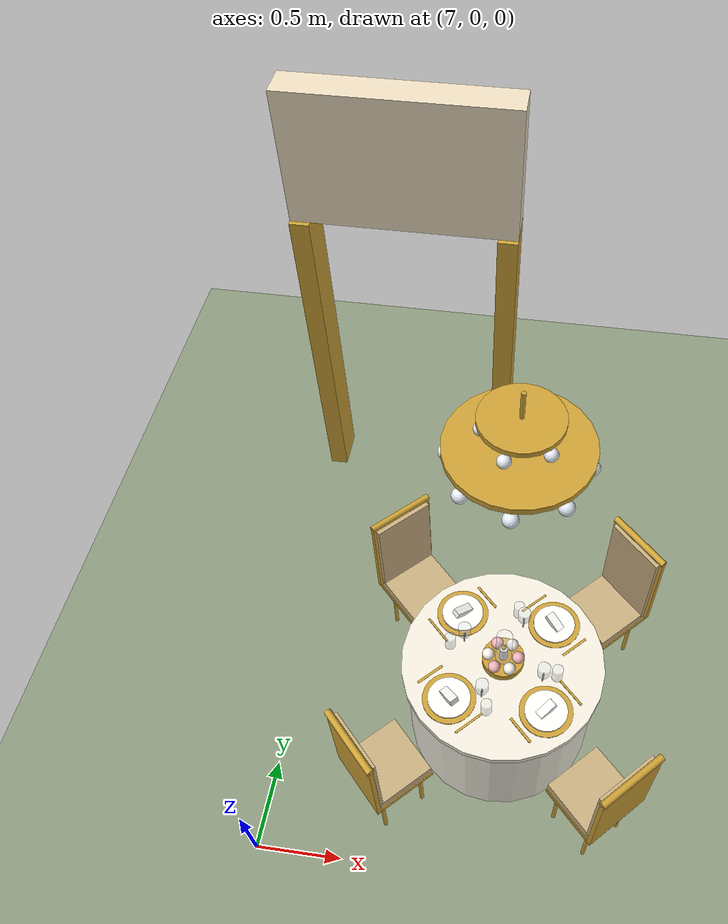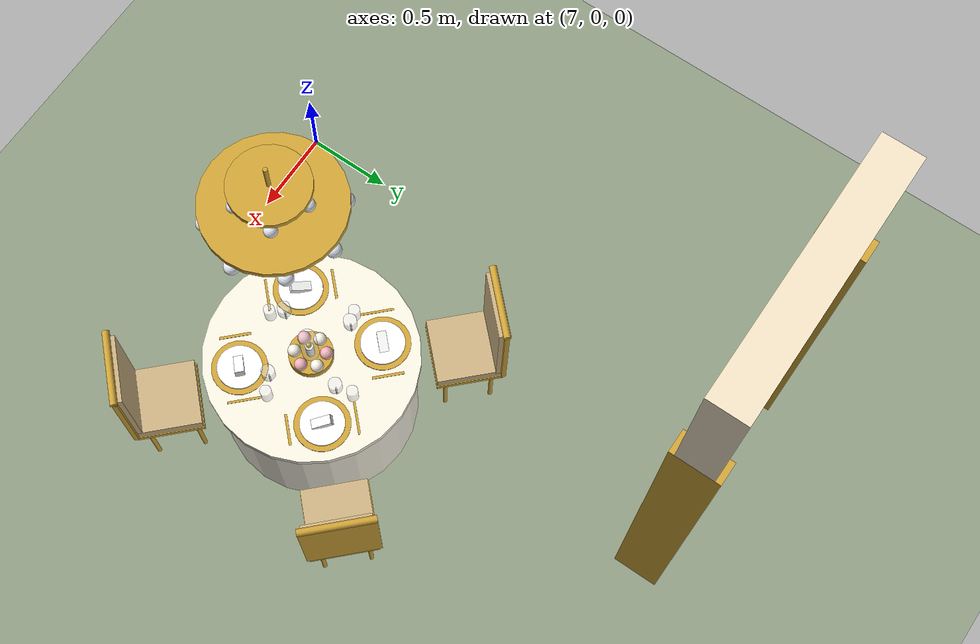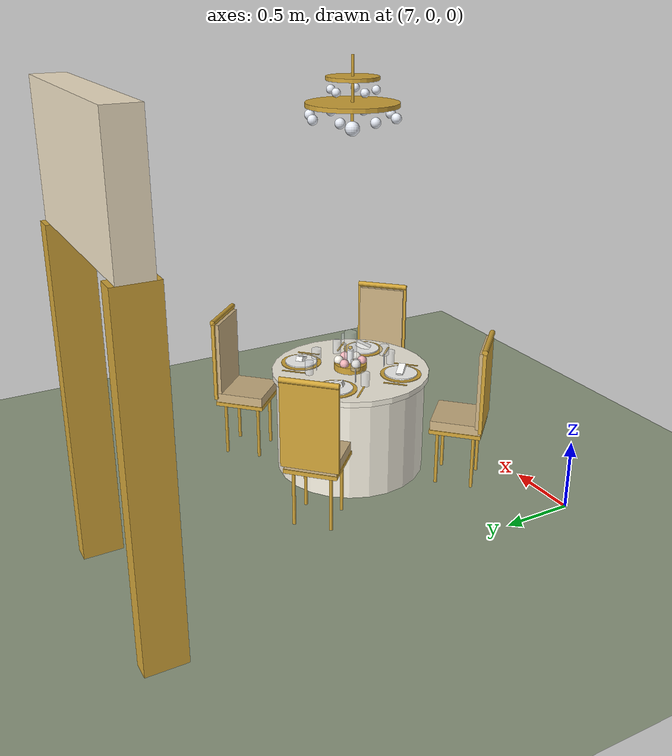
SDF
<sdf version="1.9">
 <world name="dar_tunibot">
  <model name="ground_plane">
   <static>true</static>
   <link name="link">
    <collision name="collision">
     <geometry><plane><normal>0 0 1</normal><size>60 60</size></plane></geometry>
    </collision>
    <visual name="visual">
     <geometry><plane><normal>0 0 1</normal><size>60 60</size></plane></geometry>
     <material><ambient>0.55 0.6 0.5 1</ambient><diffuse>0.55 0.6 0.5 1</diffuse></material>
    </visual>
   </link>
  </model>
  <model name="salon_arch">
   <static>true</static>
   <pose>7.45 3.0 0 0 0 0.0</pose>
   <link name="link">
    <visual name="post_a_v">
     <pose>-0.610 0.000 1.100 0.0000 0.0000 0.0000</pose>
     <geometry><box><size>0.120 0.260 2.200</size></box></geometry>
     <material>
      <ambient>0.8 0.63 0.21 1</ambient>
      <diffuse>0.8 0.63 0.21 1</diffuse>
      <specular>0.1 0.1 0.1 1</specular>
     </material>
    </visual>
    <visual name="post_b_v">
     <pose>0.610 0.000 1.100 0.0000 0.0000 0.0000</pose>
     <geometry><box><size>0.120 0.260 2.200</size></box></geometry>
     <material>
      <ambient>0.8 0.63 0.21 1</ambient>
      <diffuse>0.8 0.63 0.21 1</diffuse>
      <specular>0.1 0.1 0.1 1</specular>
     </material>
    </visual>
    <visual name="lintel_v">
     <pose>0.000 0.000 2.600 0.0000 0.0000 0.0000</pose>
     <geometry><box><size>1.340 0.200 0.800</size></box></geometry>
     <material>
      <ambient>0.93 0.87 0.76 1</ambient>
      <diffuse>0.93 0.87 0.76 1</diffuse>
      <specular>0.1 0.1 0.1 1</specular>
     </material>
    </visual>
    <collision name="lintel_c">
     <pose>0.000 0.000 2.600 0.0000 0.0000 0.0000</pose>
     <geometry><box><size>1.340 0.200 0.800</size></box></geometry>
    </collision>
    <visual name="medallion_v">
     <pose>0 0 2.6 1.5708 0 0</pose>
     <geometry><cylinder><radius>0.280</radius><length>0.050</length></cylinder></geometry>
     <material>
      <ambient>0.8 0.63 0.21 1</ambient>
      <diffuse>0.8 0.63 0.21 1</diffuse>
      <specular>0.1 0.1 0.1 1</specular>
     </material>
    </visual>
   </link>
  </model>
  <model name="table_3">
   <static>true</static>
   <pose>8.3 1.0 0 0 0 0</pose>
   <link name="link">
    <visual name="cloth_v">
     <pose>0.000 0.000 0.370 0.0000 0.0000 0.0000</pose>
     <geometry><cylinder><radius>0.550</radius><length>0.740</length></cylinder></geometry>
     <material>
      <ambient>0.95 0.93 0.87 1</ambient>
      <diffuse>0.95 0.93 0.87 1</diffuse>
      <specular>0.1 0.1 0.1 1</specular>
     </material>
    </visual>
    <collision name="cloth_c">
     <pose>0.000 0.000 0.370 0.0000 0.0000 0.0000</pose>
     <geometry><cylinder><radius>0.550</radius><length>0.740</length></cylinder></geometry>
    </collision>
    <visual name="drape_v">
     <pose>0.000 0.000 0.750 0.0000 0.0000 0.0000</pose>
     <geometry><cylinder><radius>0.580</radius><length>0.040</length></cylinder></geometry>
     <material>
      <ambient>0.95 0.93 0.87 1</ambient>
      <diffuse>0.95 0.93 0.87 1</diffuse>
      <specular>0.1 0.1 0.1 1</specular>
     </material>
    </visual>
    <visual name="bowl_v">
     <pose>0.000 0.000 0.795 0.0000 0.0000 0.0000</pose>
     <geometry><cylinder><radius>0.120</radius><length>0.050</length></cylinder></geometry>
     <material>
      <ambient>0.8 0.63 0.21 1</ambient>
      <diffuse>0.8 0.63 0.21 1</diffuse>
      <specular>0.1 0.1 0.1 1</specular>
     </material>
    </visual>
    <visual name="bowl_foot_v">
     <pose>0.000 0.000 0.775 0.0000 0.0000 0.0000</pose>
     <geometry><cylinder><radius>0.060</radius><length>0.020</length></cylinder></geometry>
     <material>
      <ambient>0.8 0.63 0.21 1</ambient>
      <diffuse>0.8 0.63 0.21 1</diffuse>
      <specular>0.1 0.1 0.1 1</specular>
     </material>
    </visual>
    <visual name="candle_v">
     <pose>0.000 0.000 0.870 0.0000 0.0000 0.0000</pose>
     <geometry><cylinder><radius>0.022</radius><length>0.100</length></cylinder></geometry>
     <material>
      <ambient>0.98 0.98 0.97 1</ambient>
      <diffuse>0.98 0.98 0.97 1</diffuse>
      <specular>0.1 0.1 0.1 1</specular>
     </material>
    </visual>
    <visual name="flame_v">
     <pose>0.000 0.000 0.935 0.0000 0.0000 0.0000</pose>
     <geometry><sphere><radius>0.014</radius></sphere></geometry>
     <material>
      <ambient>0.8 0.63 0.21 1</ambient>
      <diffuse>0.8 0.63 0.21 1</diffuse>
      <specular>0.1 0.1 0.1 1</specular>
      <emissive>1.0 0.6 0.2 1</emissive>
     </material>
    </visual>
    <visual name="hurricane_v">
     <pose>0.000 0.000 0.940 0.0000 0.0000 0.0000</pose>
     <geometry><cylinder><radius>0.045</radius><length>0.240</length></cylinder></geometry>
     <transparency>0.75</transparency>
     <material>
      <ambient>0.9 0.92 0.96 1</ambient>
      <diffuse>0.9 0.92 0.96 1</diffuse>
      <specular>0.1 0.1 0.1 1</specular>
     </material>
    </visual>
    <visual name="rose0_v">
     <pose>0.085 0.000 0.835 0.0000 0.0000 0.0000</pose>
     <geometry><sphere><radius>0.035</radius></sphere></geometry>
     <material>
      <ambient>0.93 0.7 0.72 1</ambient>
      <diffuse>0.93 0.7 0.72 1</diffuse>
      <specular>0.1 0.1 0.1 1</specular>
     </material>
    </visual>
    <visual name="rose1_v">
     <pose>0.043 0.074 0.835 0.0000 0.0000 0.0000</pose>
     <geometry><sphere><radius>0.035</radius></sphere></geometry>
     <material>
      <ambient>0.97 0.95 0.91 1</ambient>
      <diffuse>0.97 0.95 0.91 1</diffuse>
      <specular>0.1 0.1 0.1 1</specular>
     </material>
    </visual>
    <visual name="rose2_v">
     <pose>-0.042 0.074 0.835 0.0000 0.0000 0.0000</pose>
     <geometry><sphere><radius>0.035</radius></sphere></geometry>
     <material>
      <ambient>0.93 0.7 0.72 1</ambient>
      <diffuse>0.93 0.7 0.72 1</diffuse>
      <specular>0.1 0.1 0.1 1</specular>
     </material>
    </visual>
    <visual name="rose3_v">
     <pose>-0.085 0.000 0.835 0.0000 0.0000 0.0000</pose>
     <geometry><sphere><radius>0.035</radius></sphere></geometry>
     <material>
      <ambient>0.97 0.95 0.91 1</ambient>
      <diffuse>0.97 0.95 0.91 1</diffuse>
      <specular>0.1 0.1 0.1 1</specular>
     </material>
    </visual>
    <visual name="rose4_v">
     <pose>-0.043 -0.074 0.835 0.0000 0.0000 0.0000</pose>
     <geometry><sphere><radius>0.035</radius></sphere></geometry>
     <material>
      <ambient>0.93 0.7 0.72 1</ambient>
      <diffuse>0.93 0.7 0.72 1</diffuse>
      <specular>0.1 0.1 0.1 1</specular>
     </material>
    </visual>
    <visual name="rose5_v">
     <pose>0.043 -0.074 0.835 0.0000 0.0000 0.0000</pose>
     <geometry><sphere><radius>0.035</radius></sphere></geometry>
     <material>
      <ambient>0.97 0.95 0.91 1</ambient>
      <diffuse>0.97 0.95 0.91 1</diffuse>
      <specular>0.1 0.1 0.1 1</specular>
     </material>
    </visual>
    <collision name="seat0_c">
     <pose>0.580 0.580 0.225 0.0000 0.0000 0.0000</pose>
     <geometry><box><size>0.400 0.400 0.450</size></box></geometry>
    </collision>
    <visual name="seat_frame0_v">
     <pose>0.580 0.580 0.430 0.0000 0.0000 0.7854</pose>
     <geometry><box><size>0.370 0.370 0.030</size></box></geometry>
     <material>
      <ambient>0.8 0.63 0.21 1</ambient>
      <diffuse>0.8 0.63 0.21 1</diffuse>
      <specular>0.1 0.1 0.1 1</specular>
     </material>
    </visual>
    <visual name="cushion0_v">
     <pose>0.580 0.580 0.480 0.0000 0.0000 0.7854</pose>
     <geometry><box><size>0.360 0.360 0.070</size></box></geometry>
     <material>
      <ambient>0.78 0.68 0.5 1</ambient>
      <diffuse>0.78 0.68 0.5 1</diffuse>
      <specular>0.1 0.1 0.1 1</specular>
     </material>
    </visual>
    <visual name="back_frame0_v">
     <pose>0.707 0.707 0.780 0.0000 0.0000 0.7854</pose>
     <geometry><box><size>0.025 0.400 0.620</size></box></geometry>
     <material>
      <ambient>0.8 0.63 0.21 1</ambient>
      <diffuse>0.8 0.63 0.21 1</diffuse>
      <specular>0.1 0.1 0.1 1</specular>
     </material>
    </visual>
    <visual name="back0_v">
     <pose>0.697 0.697 0.780 0.0000 0.0000 0.7854</pose>
     <geometry><box><size>0.050 0.360 0.580</size></box></geometry>
     <material>
      <ambient>0.78 0.68 0.5 1</ambient>
      <diffuse>0.78 0.68 0.5 1</diffuse>
      <specular>0.1 0.1 0.1 1</specular>
     </material>
    </visual>
    <visual name="back_top0_v">
     <pose>0.707 0.707 1.090 1.5708 0.0000 0.7854</pose>
     <geometry><cylinder><radius>0.020</radius><length>0.400</length></cylinder></geometry>
     <material>
      <ambient>0.8 0.63 0.21 1</ambient>
      <diffuse>0.8 0.63 0.21 1</diffuse>
      <specular>0.1 0.1 0.1 1</specular>
     </material>
    </visual>
    <visual name="leg0_0_v">
     <pose>0.580 0.396 0.210 0.0000 0.0000 0.7854</pose>
     <geometry><cylinder><radius>0.012</radius><length>0.420</length></cylinder></geometry>
     <material>
      <ambient>0.8 0.63 0.21 1</ambient>
      <diffuse>0.8 0.63 0.21 1</diffuse>
      <specular>0.1 0.1 0.1 1</specular>
     </material>
    </visual>
    <visual name="leg0_1_v">
     <pose>0.396 0.580 0.210 0.0000 0.0000 0.7854</pose>
     <geometry><cylinder><radius>0.012</radius><length>0.420</length></cylinder></geometry>
     <material>
      <ambient>0.8 0.63 0.21 1</ambient>
      <diffuse>0.8 0.63 0.21 1</diffuse>
      <specular>0.1 0.1 0.1 1</specular>
     </material>
    </visual>
    <visual name="leg0_2_v">
     <pose>0.764 0.580 0.210 0.0000 0.0000 0.7854</pose>
     <geometry><cylinder><radius>0.012</radius><length>0.420</length></cylinder></geometry>
     <material>
      <ambient>0.8 0.63 0.21 1</ambient>
      <diffuse>0.8 0.63 0.21 1</diffuse>
      <specular>0.1 0.1 0.1 1</specular>
     </material>
    </visual>
    <visual name="leg0_3_v">
     <pose>0.580 0.764 0.210 0.0000 0.0000 0.7854</pose>
     <geometry><cylinder><radius>0.012</radius><length>0.420</length></cylinder></geometry>
     <material>
      <ambient>0.8 0.63 0.21 1</ambient>
      <diffuse>0.8 0.63 0.21 1</diffuse>
      <specular>0.1 0.1 0.1 1</specular>
     </material>
    </visual>
    <visual name="charger0_v">
     <pose>0.269 0.269 0.773 0.0000 0.0000 0.7854</pose>
     <geometry><cylinder><radius>0.150</radius><length>0.006</length></cylinder></geometry>
     <material>
      <ambient>0.8 0.63 0.21 1</ambient>
      <diffuse>0.8 0.63 0.21 1</diffuse>
      <specular>0.1 0.1 0.1 1</specular>
     </material>
    </visual>
    <visual name="plate0_v">
     <pose>0.269 0.269 0.781 0.0000 0.0000 0.7854</pose>
     <geometry><cylinder><radius>0.120</radius><length>0.010</length></cylinder></geometry>
     <material>
      <ambient>0.98 0.98 0.97 1</ambient>
      <diffuse>0.98 0.98 0.97 1</diffuse>
      <specular>0.1 0.1 0.1 1</specular>
     </material>
    </visual>
    <visual name="napkin0_v">
     <pose>0.269 0.269 0.803 0.3500 0.0000 0.7854</pose>
     <geometry><box><size>0.050 0.110 0.035</size></box></geometry>
     <material>
      <ambient>0.98 0.98 0.97 1</ambient>
      <diffuse>0.98 0.98 0.97 1</diffuse>
      <specular>0.1 0.1 0.1 1</specular>
     </material>
    </visual>
    <visual name="fork0_v">
     <pose>0.396 0.141 0.772 0.0000 0.0000 0.7854</pose>
     <geometry><box><size>0.170 0.014 0.004</size></box></geometry>
     <material>
      <ambient>0.8 0.63 0.21 1</ambient>
      <diffuse>0.8 0.63 0.21 1</diffuse>
      <specular>0.1 0.1 0.1 1</specular>
     </material>
    </visual>
    <visual name="knife0_v">
     <pose>0.141 0.396 0.772 0.0000 0.0000 0.7854</pose>
     <geometry><box><size>0.180 0.012 0.004</size></box></geometry>
     <material>
      <ambient>0.8 0.63 0.21 1</ambient>
      <diffuse>0.8 0.63 0.21 1</diffuse>
      <specular>0.1 0.1 0.1 1</specular>
     </material>
    </visual>
    <visual name="wine_stem0_v">
     <pose>0.092 0.233 0.820 0.0000 0.0000 0.7854</pose>
     <geometry><cylinder><radius>0.004</radius><length>0.100</length></cylinder></geometry>
     <material>
      <ambient>0.9 0.92 0.96 1</ambient>
      <diffuse>0.9 0.92 0.96 1</diffuse>
      <specular>0.1 0.1 0.1 1</specular>
     </material>
    </visual>
    <visual name="wine_bowl0_v">
     <pose>0.092 0.233 0.905 0.0000 0.0000 0.7854</pose>
     <geometry><cylinder><radius>0.035</radius><length>0.070</length></cylinder></geometry>
     <transparency>0.6</transparency>
     <material>
      <ambient>0.9 0.92 0.96 1</ambient>
      <diffuse>0.9 0.92 0.96 1</diffuse>
      <specular>0.1 0.1 0.1 1</specular>
     </material>
    </visual>
    <visual name="water0_v">
     <pose>0.057 0.311 0.820 0.0000 0.0000 0.7854</pose>
     <geometry><cylinder><radius>0.030</radius><length>0.100</length></cylinder></geometry>
     <transparency>0.6</transparency>
     <material>
      <ambient>0.9 0.92 0.96 1</ambient>
      <diffuse>0.9 0.92 0.96 1</diffuse>
      <specular>0.1 0.1 0.1 1</specular>
     </material>
    </visual>
    <collision name="seat1_c">
     <pose>-0.580 0.580 0.225 0.0000 0.0000 0.0000</pose>
     <geometry><box><size>0.400 0.400 0.450</size></box></geometry>
    </collision>
    <visual name="seat_frame1_v">
     <pose>-0.580 0.580 0.430 0.0000 0.0000 2.3562</pose>
     <geometry><box><size>0.370 0.370 0.030</size></box></geometry>
     <material>
      <ambient>0.8 0.63 0.21 1</ambient>
      <diffuse>0.8 0.63 0.21 1</diffuse>
      <specular>0.1 0.1 0.1 1</specular>
     </material>
    </visual>
    <visual name="cushion1_v">
     <pose>-0.580 0.580 0.480 0.0000 0.0000 2.3562</pose>
     <geometry><box><size>0.360 0.360 0.070</size></box></geometry>
     <material>
      <ambient>0.78 0.68 0.5 1</ambient>
      <diffuse>0.78 0.68 0.5 1</diffuse>
      <specular>0.1 0.1 0.1 1</specular>
     </material>
    </visual>
    <visual name="back_frame1_v">
     <pose>-0.707 0.707 0.780 0.0000 0.0000 2.3562</pose>
     <geometry><box><size>0.025 0.400 0.620</size></box></geometry>
     <material>
      <ambient>0.8 0.63 0.21 1</ambient>
      <diffuse>0.8 0.63 0.21 1</diffuse>
      <specular>0.1 0.1 0.1 1</specular>
     </material>
    </visual>
    <visual name="back1_v">
     <pose>-0.697 0.697 0.780 0.0000 0.0000 2.3562</pose>
     <geometry><box><size>0.050 0.360 0.580</size></box></geometry>
     <material>
      <ambient>0.78 0.68 0.5 1</ambient>
      <diffuse>0.78 0.68 0.5 1</diffuse>
      <specular>0.1 0.1 0.1 1</specular>
     </material>
    </visual>
    <visual name="back_top1_v">
     <pose>-0.707 0.707 1.090 1.5708 0.0000 2.3562</pose>
     <geometry><cylinder><radius>0.020</radius><length>0.400</length></cylinder></geometry>
     <material>
      <ambient>0.8 0.63 0.21 1</ambient>
      <diffuse>0.8 0.63 0.21 1</diffuse>
      <specular>0.1 0.1 0.1 1</specular>
     </material>
    </visual>
    <visual name="leg1_0_v">
     <pose>-0.396 0.580 0.210 0.0000 0.0000 2.3562</pose>
     <geometry><cylinder><radius>0.012</radius><length>0.420</length></cylinder></geometry>
     <material>
      <ambient>0.8 0.63 0.21 1</ambient>
      <diffuse>0.8 0.63 0.21 1</diffuse>
      <specular>0.1 0.1 0.1 1</specular>
     </material>
    </visual>
    <visual name="leg1_1_v">
     <pose>-0.580 0.396 0.210 0.0000 0.0000 2.3562</pose>
     <geometry><cylinder><radius>0.012</radius><length>0.420</length></cylinder></geometry>
     <material>
      <ambient>0.8 0.63 0.21 1</ambient>
      <diffuse>0.8 0.63 0.21 1</diffuse>
      <specular>0.1 0.1 0.1 1</specular>
     </material>
    </visual>
    <visual name="leg1_2_v">
     <pose>-0.580 0.764 0.210 0.0000 0.0000 2.3562</pose>
     <geometry><cylinder><radius>0.012</radius><length>0.420</length></cylinder></geometry>
     <material>
      <ambient>0.8 0.63 0.21 1</ambient>
      <diffuse>0.8 0.63 0.21 1</diffuse>
      <specular>0.1 0.1 0.1 1</specular>
     </material>
    </visual>
    <visual name="leg1_3_v">
     <pose>-0.764 0.580 0.210 0.0000 0.0000 2.3562</pose>
     <geometry><cylinder><radius>0.012</radius><length>0.420</length></cylinder></geometry>
     <material>
      <ambient>0.8 0.63 0.21 1</ambient>
      <diffuse>0.8 0.63 0.21 1</diffuse>
      <specular>0.1 0.1 0.1 1</specular>
     </material>
    </visual>
    <visual name="charger1_v">
     <pose>-0.269 0.269 0.773 0.0000 0.0000 2.3562</pose>
     <geometry><cylinder><radius>0.150</radius><length>0.006</length></cylinder></geometry>
     <material>
      <ambient>0.8 0.63 0.21 1</ambient>
      <diffuse>0.8 0.63 0.21 1</diffuse>
      <specular>0.1 0.1 0.1 1</specular>
     </material>
    </visual>
    <visual name="plate1_v">
     <pose>-0.269 0.269 0.781 0.0000 0.0000 2.3562</pose>
     <geometry><cylinder><radius>0.120</radius><length>0.010</length></cylinder></geometry>
     <material>
      <ambient>0.98 0.98 0.97 1</ambient>
      <diffuse>0.98 0.98 0.97 1</diffuse>
      <specular>0.1 0.1 0.1 1</specular>
     </material>
    </visual>
    <visual name="napkin1_v">
     <pose>-0.269 0.269 0.803 0.3500 0.0000 2.3562</pose>
     <geometry><box><size>0.050 0.110 0.035</size></box></geometry>
     <material>
      <ambient>0.98 0.98 0.97 1</ambient>
      <diffuse>0.98 0.98 0.97 1</diffuse>
      <specular>0.1 0.1 0.1 1</specular>
     </material>
    </visual>
    <visual name="fork1_v">
     <pose>-0.141 0.396 0.772 0.0000 0.0000 2.3562</pose>
     <geometry><box><size>0.170 0.014 0.004</size></box></geometry>
     <material>
      <ambient>0.8 0.63 0.21 1</ambient>
      <diffuse>0.8 0.63 0.21 1</diffuse>
      <specular>0.1 0.1 0.1 1</specular>
     </material>
    </visual>
    <visual name="knife1_v">
     <pose>-0.396 0.141 0.772 0.0000 0.0000 2.3562</pose>
     <geometry><box><size>0.180 0.012 0.004</size></box></geometry>
     <material>
      <ambient>0.8 0.63 0.21 1</ambient>
      <diffuse>0.8 0.63 0.21 1</diffuse>
      <specular>0.1 0.1 0.1 1</specular>
     </material>
    </visual>
    <visual name="wine_stem1_v">
     <pose>-0.233 0.092 0.820 0.0000 0.0000 2.3562</pose>
     <geometry><cylinder><radius>0.004</radius><length>0.100</length></cylinder></geometry>
     <material>
      <ambient>0.9 0.92 0.96 1</ambient>
      <diffuse>0.9 0.92 0.96 1</diffuse>
      <specular>0.1 0.1 0.1 1</specular>
     </material>
    </visual>
    <visual name="wine_bowl1_v">
     <pose>-0.233 0.092 0.905 0.0000 0.0000 2.3562</pose>
     <geometry><cylinder><radius>0.035</radius><length>0.070</length></cylinder></geometry>
     <transparency>0.6</transparency>
     <material>
      <ambient>0.9 0.92 0.96 1</ambient>
      <diffuse>0.9 0.92 0.96 1</diffuse>
      <specular>0.1 0.1 0.1 1</specular>
     </material>
    </visual>
    <visual name="water1_v">
     <pose>-0.311 0.057 0.820 0.0000 0.0000 2.3562</pose>
     <geometry><cylinder><radius>0.030</radius><length>0.100</length></cylinder></geometry>
     <transparency>0.6</transparency>
     <material>
      <ambient>0.9 0.92 0.96 1</ambient>
      <diffuse>0.9 0.92 0.96 1</diffuse>
      <specular>0.1 0.1 0.1 1</specular>
     </material>
    </visual>
    <collision name="seat2_c">
     <pose>-0.580 -0.580 0.225 0.0000 0.0000 0.0000</pose>
     <geometry><box><size>0.400 0.400 0.450</size></box></geometry>
    </collision>
    <visual name="seat_frame2_v">
     <pose>-0.580 -0.580 0.430 0.0000 0.0000 3.9270</pose>
     <geometry><box><size>0.370 0.370 0.030</size></box></geometry>
     <material>
      <ambient>0.8 0.63 0.21 1</ambient>
      <diffuse>0.8 0.63 0.21 1</diffuse>
      <specular>0.1 0.1 0.1 1</specular>
     </material>
    </visual>
    <visual name="cushion2_v">
     <pose>-0.580 -0.580 0.480 0.0000 0.0000 3.9270</pose>
     <geometry><box><size>0.360 0.360 0.070</size></box></geometry>
     <material>
      <ambient>0.78 0.68 0.5 1</ambient>
      <diffuse>0.78 0.68 0.5 1</diffuse>
      <specular>0.1 0.1 0.1 1</specular>
     </material>
    </visual>
    <visual name="back_frame2_v">
     <pose>-0.707 -0.707 0.780 0.0000 0.0000 3.9270</pose>
     <geometry><box><size>0.025 0.400 0.620</size></box></geometry>
     <material>
      <ambient>0.8 0.63 0.21 1</ambient>
      <diffuse>0.8 0.63 0.21 1</diffuse>
      <specular>0.1 0.1 0.1 1</specular>
     </material>
    </visual>
    <visual name="back2_v">
     <pose>-0.697 -0.697 0.780 0.0000 0.0000 3.9270</pose>
     <geometry><box><size>0.050 0.360 0.580</size></box></geometry>
     <material>
      <ambient>0.78 0.68 0.5 1</ambient>
      <diffuse>0.78 0.68 0.5 1</diffuse>
      <specular>0.1 0.1 0.1 1</specular>
     </material>
    </visual>
    <visual name="back_top2_v">
     <pose>-0.707 -0.707 1.090 1.5708 0.0000 3.9270</pose>
     <geometry><cylinder><radius>0.020</radius><length>0.400</length></cylinder></geometry>
     <material>
      <ambient>0.8 0.63 0.21 1</ambient>
      <diffuse>0.8 0.63 0.21 1</diffuse>
      <specular>0.1 0.1 0.1 1</specular>
     </material>
    </visual>
    <visual name="leg2_0_v">
     <pose>-0.580 -0.396 0.210 0.0000 0.0000 3.9270</pose>
     <geometry><cylinder><radius>0.012</radius><length>0.420</length></cylinder></geometry>
     <material>
      <ambient>0.8 0.63 0.21 1</ambient>
      <diffuse>0.8 0.63 0.21 1</diffuse>
      <specular>0.1 0.1 0.1 1</specular>
     </material>
    </visual>
    <visual name="leg2_1_v">
     <pose>-0.396 -0.580 0.210 0.0000 0.0000 3.9270</pose>
     <geometry><cylinder><radius>0.012</radius><length>0.420</length></cylinder></geometry>
     <material>
      <ambient>0.8 0.63 0.21 1</ambient>
      <diffuse>0.8 0.63 0.21 1</diffuse>
      <specular>0.1 0.1 0.1 1</specular>
     </material>
    </visual>
    <visual name="leg2_2_v">
     <pose>-0.764 -0.580 0.210 0.0000 0.0000 3.9270</pose>
     <geometry><cylinder><radius>0.012</radius><length>0.420</length></cylinder></geometry>
     <material>
      <ambient>0.8 0.63 0.21 1</ambient>
      <diffuse>0.8 0.63 0.21 1</diffuse>
      <specular>0.1 0.1 0.1 1</specular>
     </material>
    </visual>
    <visual name="leg2_3_v">
     <pose>-0.580 -0.764 0.210 0.0000 0.0000 3.9270</pose>
     <geometry><cylinder><radius>0.012</radius><length>0.420</length></cylinder></geometry>
     <material>
      <ambient>0.8 0.63 0.21 1</ambient>
      <diffuse>0.8 0.63 0.21 1</diffuse>
      <specular>0.1 0.1 0.1 1</specular>
     </material>
    </visual>
    <visual name="charger2_v">
     <pose>-0.269 -0.269 0.773 0.0000 0.0000 3.9270</pose>
     <geometry><cylinder><radius>0.150</radius><length>0.006</length></cylinder></geometry>
     <material>
      <ambient>0.8 0.63 0.21 1</ambient>
      <diffuse>0.8 0.63 0.21 1</diffuse>
      <specular>0.1 0.1 0.1 1</specular>
     </material>
    </visual>
    <visual name="plate2_v">
     <pose>-0.269 -0.269 0.781 0.0000 0.0000 3.9270</pose>
     <geometry><cylinder><radius>0.120</radius><length>0.010</length></cylinder></geometry>
     <material>
      <ambient>0.98 0.98 0.97 1</ambient>
      <diffuse>0.98 0.98 0.97 1</diffuse>
      <specular>0.1 0.1 0.1 1</specular>
     </material>
    </visual>
    <visual name="napkin2_v">
     <pose>-0.269 -0.269 0.803 0.3500 0.0000 3.9270</pose>
     <geometry><box><size>0.050 0.110 0.035</size></box></geometry>
     <material>
      <ambient>0.98 0.98 0.97 1</ambient>
      <diffuse>0.98 0.98 0.97 1</diffuse>
      <specular>0.1 0.1 0.1 1</specular>
     </material>
    </visual>
    <visual name="fork2_v">
     <pose>-0.396 -0.141 0.772 0.0000 0.0000 3.9270</pose>
     <geometry><box><size>0.170 0.014 0.004</size></box></geometry>
     <material>
      <ambient>0.8 0.63 0.21 1</ambient>
      <diffuse>0.8 0.63 0.21 1</diffuse>
      <specular>0.1 0.1 0.1 1</specular>
     </material>
    </visual>
    <visual name="knife2_v">
     <pose>-0.141 -0.396 0.772 0.0000 0.0000 3.9270</pose>
     <geometry><box><size>0.180 0.012 0.004</size></box></geometry>
     <material>
      <ambient>0.8 0.63 0.21 1</ambient>
      <diffuse>0.8 0.63 0.21 1</diffuse>
      <specular>0.1 0.1 0.1 1</specular>
     </material>
    </visual>
    <visual name="wine_stem2_v">
     <pose>-0.092 -0.233 0.820 0.0000 0.0000 3.9270</pose>
     <geometry><cylinder><radius>0.004</radius><length>0.100</length></cylinder></geometry>
     <material>
      <ambient>0.9 0.92 0.96 1</ambient>
      <diffuse>0.9 0.92 0.96 1</diffuse>
      <specular>0.1 0.1 0.1 1</specular>
     </material>
    </visual>
    <visual name="wine_bowl2_v">
     <pose>-0.092 -0.233 0.905 0.0000 0.0000 3.9270</pose>
     <geometry><cylinder><radius>0.035</radius><length>0.070</length></cylinder></geometry>
     <transparency>0.6</transparency>
     <material>
      <ambient>0.9 0.92 0.96 1</ambient>
      <diffuse>0.9 0.92 0.96 1</diffuse>
      <specular>0.1 0.1 0.1 1</specular>
     </material>
    </visual>
    <visual name="water2_v">
     <pose>-0.057 -0.311 0.820 0.0000 0.0000 3.9270</pose>
     <geometry><cylinder><radius>0.030</radius><length>0.100</length></cylinder></geometry>
     <transparency>0.6</transparency>
     <material>
      <ambient>0.9 0.92 0.96 1</ambient>
      <diffuse>0.9 0.92 0.96 1</diffuse>
      <specular>0.1 0.1 0.1 1</specular>
     </material>
    </visual>
    <collision name="seat3_c">
     <pose>0.580 -0.580 0.225 0.0000 0.0000 0.0000</pose>
     <geometry><box><size>0.400 0.400 0.450</size></box></geometry>
    </collision>
    <visual name="seat_frame3_v">
     <pose>0.580 -0.580 0.430 0.0000 0.0000 5.4978</pose>
     <geometry><box><size>0.370 0.370 0.030</size></box></geometry>
     <material>
      <ambient>0.8 0.63 0.21 1</ambient>
      <diffuse>0.8 0.63 0.21 1</diffuse>
      <specular>0.1 0.1 0.1 1</specular>
     </material>
    </visual>
    <visual name="cushion3_v">
     <pose>0.580 -0.580 0.480 0.0000 0.0000 5.4978</pose>
     <geometry><box><size>0.360 0.360 0.070</size></box></geometry>
     <material>
      <ambient>0.78 0.68 0.5 1</ambient>
      <diffuse>0.78 0.68 0.5 1</diffuse>
      <specular>0.1 0.1 0.1 1</specular>
     </material>
    </visual>
    <visual name="back_frame3_v">
     <pose>0.707 -0.707 0.780 0.0000 0.0000 5.4978</pose>
     <geometry><box><size>0.025 0.400 0.620</size></box></geometry>
     <material>
      <ambient>0.8 0.63 0.21 1</ambient>
      <diffuse>0.8 0.63 0.21 1</diffuse>
      <specular>0.1 0.1 0.1 1</specular>
     </material>
    </visual>
    <visual name="back3_v">
     <pose>0.697 -0.697 0.780 0.0000 0.0000 5.4978</pose>
     <geometry><box><size>0.050 0.360 0.580</size></box></geometry>
     <material>
      <ambient>0.78 0.68 0.5 1</ambient>
      <diffuse>0.78 0.68 0.5 1</diffuse>
      <specular>0.1 0.1 0.1 1</specular>
     </material>
    </visual>
    <visual name="back_top3_v">
     <pose>0.707 -0.707 1.090 1.5708 0.0000 5.4978</pose>
     <geometry><cylinder><radius>0.020</radius><length>0.400</length></cylinder></geometry>
     <material>
      <ambient>0.8 0.63 0.21 1</ambient>
      <diffuse>0.8 0.63 0.21 1</diffuse>
      <specular>0.1 0.1 0.1 1</specular>
     </material>
    </visual>
    <visual name="leg3_0_v">
     <pose>0.396 -0.580 0.210 0.0000 0.0000 5.4978</pose>
     <geometry><cylinder><radius>0.012</radius><length>0.420</length></cylinder></geometry>
     <material>
      <ambient>0.8 0.63 0.21 1</ambient>
      <diffuse>0.8 0.63 0.21 1</diffuse>
      <specular>0.1 0.1 0.1 1</specular>
     </material>
    </visual>
    <visual name="leg3_1_v">
     <pose>0.580 -0.396 0.210 0.0000 0.0000 5.4978</pose>
     <geometry><cylinder><radius>0.012</radius><length>0.420</length></cylinder></geometry>
     <material>
      <ambient>0.8 0.63 0.21 1</ambient>
      <diffuse>0.8 0.63 0.21 1</diffuse>
      <specular>0.1 0.1 0.1 1</specular>
     </material>
    </visual>
    <visual name="leg3_2_v">
     <pose>0.580 -0.764 0.210 0.0000 0.0000 5.4978</pose>
     <geometry><cylinder><radius>0.012</radius><length>0.420</length></cylinder></geometry>
     <material>
      <ambient>0.8 0.63 0.21 1</ambient>
      <diffuse>0.8 0.63 0.21 1</diffuse>
      <specular>0.1 0.1 0.1 1</specular>
     </material>
    </visual>
    <visual name="leg3_3_v">
     <pose>0.764 -0.580 0.210 0.0000 0.0000 5.4978</pose>
     <geometry><cylinder><radius>0.012</radius><length>0.420</length></cylinder></geometry>
     <material>
      <ambient>0.8 0.63 0.21 1</ambient>
      <diffuse>0.8 0.63 0.21 1</diffuse>
      <specular>0.1 0.1 0.1 1</specular>
     </material>
    </visual>
    <visual name="charger3_v">
     <pose>0.269 -0.269 0.773 0.0000 0.0000 5.4978</pose>
     <geometry><cylinder><radius>0.150</radius><length>0.006</length></cylinder></geometry>
     <material>
      <ambient>0.8 0.63 0.21 1</ambient>
      <diffuse>0.8 0.63 0.21 1</diffuse>
      <specular>0.1 0.1 0.1 1</specular>
     </material>
    </visual>
    <visual name="plate3_v">
     <pose>0.269 -0.269 0.781 0.0000 0.0000 5.4978</pose>
     <geometry><cylinder><radius>0.120</radius><length>0.010</length></cylinder></geometry>
     <material>
      <ambient>0.98 0.98 0.97 1</ambient>
      <diffuse>0.98 0.98 0.97 1</diffuse>
      <specular>0.1 0.1 0.1 1</specular>
     </material>
    </visual>
    <visual name="napkin3_v">
     <pose>0.269 -0.269 0.803 0.3500 0.0000 5.4978</pose>
     <geometry><box><size>0.050 0.110 0.035</size></box></geometry>
     <material>
      <ambient>0.98 0.98 0.97 1</ambient>
      <diffuse>0.98 0.98 0.97 1</diffuse>
      <specular>0.1 0.1 0.1 1</specular>
     </material>
    </visual>
    <visual name="fork3_v">
     <pose>0.141 -0.396 0.772 0.0000 0.0000 5.4978</pose>
     <geometry><box><size>0.170 0.014 0.004</size></box></geometry>
     <material>
      <ambient>0.8 0.63 0.21 1</ambient>
      <diffuse>0.8 0.63 0.21 1</diffuse>
      <specular>0.1 0.1 0.1 1</specular>
     </material>
    </visual>
    <visual name="knife3_v">
     <pose>0.396 -0.141 0.772 0.0000 0.0000 5.4978</pose>
     <geometry><box><size>0.180 0.012 0.004</size></box></geometry>
     <material>
      <ambient>0.8 0.63 0.21 1</ambient>
      <diffuse>0.8 0.63 0.21 1</diffuse>
      <specular>0.1 0.1 0.1 1</specular>
     </material>
    </visual>
    <visual name="wine_stem3_v">
     <pose>0.233 -0.092 0.820 0.0000 0.0000 5.4978</pose>
     <geometry><cylinder><radius>0.004</radius><length>0.100</length></cylinder></geometry>
     <material>
      <ambient>0.9 0.92 0.96 1</ambient>
      <diffuse>0.9 0.92 0.96 1</diffuse>
      <specular>0.1 0.1 0.1 1</specular>
     </material>
    </visual>
    <visual name="wine_bowl3_v">
     <pose>0.233 -0.092 0.905 0.0000 0.0000 5.4978</pose>
     <geometry><cylinder><radius>0.035</radius><length>0.070</length></cylinder></geometry>
     <transparency>0.6</transparency>
     <material>
      <ambient>0.9 0.92 0.96 1</ambient>
      <diffuse>0.9 0.92 0.96 1</diffuse>
      <specular>0.1 0.1 0.1 1</specular>
     </material>
    </visual>
    <visual name="water3_v">
     <pose>0.311 -0.057 0.820 0.0000 0.0000 5.4978</pose>
     <geometry><cylinder><radius>0.030</radius><length>0.100</length></cylinder></geometry>
     <transparency>0.6</transparency>
     <material>
      <ambient>0.9 0.92 0.96 1</ambient>
      <diffuse>0.9 0.92 0.96 1</diffuse>
      <specular>0.1 0.1 0.1 1</specular>
     </material>
    </visual>
    <visual name="chand_rod_v">
     <pose>0.000 0.000 2.750 0.0000 0.0000 0.0000</pose>
     <geometry><cylinder><radius>0.010</radius><length>0.500</length></cylinder></geometry>
     <material>
      <ambient>0.8 0.63 0.21 1</ambient>
      <diffuse>0.8 0.63 0.21 1</diffuse>
      <specular>0.1 0.1 0.1 1</specular>
     </material>
    </visual>
    <visual name="chand_ring_v">
     <pose>0.000 0.000 2.680 0.0000 0.0000 0.0000</pose>
     <geometry><cylinder><radius>0.320</radius><length>0.030</length></cylinder></geometry>
     <material>
      <ambient>0.8 0.63 0.21 1</ambient>
      <diffuse>0.8 0.63 0.21 1</diffuse>
      <specular>0.1 0.1 0.1 1</specular>
     </material>
    </visual>
    <visual name="chand_ring_top_v">
     <pose>0.000 0.000 2.850 0.0000 0.0000 0.0000</pose>
     <geometry><cylinder><radius>0.180</radius><length>0.025</length></cylinder></geometry>
     <material>
      <ambient>0.8 0.63 0.21 1</ambient>
      <diffuse>0.8 0.63 0.21 1</diffuse>
      <specular>0.1 0.1 0.1 1</specular>
     </material>
    </visual>
    <visual name="chand_drop_v">
     <pose>0.000 0.000 2.520 0.0000 0.0000 0.0000</pose>
     <geometry><sphere><radius>0.050</radius></sphere></geometry>
     <material>
      <ambient>0.9 0.92 0.96 1</ambient>
      <diffuse>0.9 0.92 0.96 1</diffuse>
      <specular>0.1 0.1 0.1 1</specular>
      <emissive>0.55 0.52 0.45 1</emissive>
     </material>
    </visual>
    <visual name="crystal0_0_v">
     <pose>0.300 0.000 2.600 0.0000 0.0000 0.0000</pose>
     <geometry><sphere><radius>0.035</radius></sphere></geometry>
     <material>
      <ambient>0.9 0.92 0.96 1</ambient>
      <diffuse>0.9 0.92 0.96 1</diffuse>
      <specular>0.1 0.1 0.1 1</specular>
      <emissive>0.55 0.52 0.45 1</emissive>
     </material>
    </visual>
    <visual name="crystal0_1_v">
     <pose>0.212 0.212 2.600 0.0000 0.0000 0.0000</pose>
     <geometry><sphere><radius>0.035</radius></sphere></geometry>
     <material>
      <ambient>0.9 0.92 0.96 1</ambient>
      <diffuse>0.9 0.92 0.96 1</diffuse>
      <specular>0.1 0.1 0.1 1</specular>
      <emissive>0.55 0.52 0.45 1</emissive>
     </material>
    </visual>
    <visual name="crystal0_2_v">
     <pose>0.000 0.300 2.600 0.0000 0.0000 0.0000</pose>
     <geometry><sphere><radius>0.035</radius></sphere></geometry>
     <material>
      <ambient>0.9 0.92 0.96 1</ambient>
      <diffuse>0.9 0.92 0.96 1</diffuse>
      <specular>0.1 0.1 0.1 1</specular>
      <emissive>0.55 0.52 0.45 1</emissive>
     </material>
    </visual>
    <visual name="crystal0_3_v">
     <pose>-0.212 0.212 2.600 0.0000 0.0000 0.0000</pose>
     <geometry><sphere><radius>0.035</radius></sphere></geometry>
     <material>
      <ambient>0.9 0.92 0.96 1</ambient>
      <diffuse>0.9 0.92 0.96 1</diffuse>
      <specular>0.1 0.1 0.1 1</specular>
      <emissive>0.55 0.52 0.45 1</emissive>
     </material>
    </visual>
    <visual name="crystal0_4_v">
     <pose>-0.300 0.000 2.600 0.0000 0.0000 0.0000</pose>
     <geometry><sphere><radius>0.035</radius></sphere></geometry>
     <material>
      <ambient>0.9 0.92 0.96 1</ambient>
      <diffuse>0.9 0.92 0.96 1</diffuse>
      <specular>0.1 0.1 0.1 1</specular>
      <emissive>0.55 0.52 0.45 1</emissive>
     </material>
    </visual>
    <visual name="crystal0_5_v">
     <pose>-0.212 -0.212 2.600 0.0000 0.0000 0.0000</pose>
     <geometry><sphere><radius>0.035</radius></sphere></geometry>
     <material>
      <ambient>0.9 0.92 0.96 1</ambient>
      <diffuse>0.9 0.92 0.96 1</diffuse>
      <specular>0.1 0.1 0.1 1</specular>
      <emissive>0.55 0.52 0.45 1</emissive>
     </material>
    </visual>
    <visual name="crystal0_6_v">
     <pose>-0.000 -0.300 2.600 0.0000 0.0000 0.0000</pose>
     <geometry><sphere><radius>0.035</radius></sphere></geometry>
     <material>
      <ambient>0.9 0.92 0.96 1</ambient>
      <diffuse>0.9 0.92 0.96 1</diffuse>
      <specular>0.1 0.1 0.1 1</specular>
      <emissive>0.55 0.52 0.45 1</emissive>
     </material>
    </visual>
    <visual name="crystal0_7_v">
     <pose>0.212 -0.212 2.600 0.0000 0.0000 0.0000</pose>
     <geometry><sphere><radius>0.035</radius></sphere></geometry>
     <material>
      <ambient>0.9 0.92 0.96 1</ambient>
      <diffuse>0.9 0.92 0.96 1</diffuse>
      <specular>0.1 0.1 0.1 1</specular>
      <emissive>0.55 0.52 0.45 1</emissive>
     </material>
    </visual>
    <visual name="crystal1_0_v">
     <pose>0.129 0.094 2.770 0.0000 0.0000 0.0000</pose>
     <geometry><sphere><radius>0.030</radius></sphere></geometry>
     <material>
      <ambient>0.9 0.92 0.96 1</ambient>
      <diffuse>0.9 0.92 0.96 1</diffuse>
      <specular>0.1 0.1 0.1 1</specular>
      <emissive>0.55 0.52 0.45 1</emissive>
     </material>
    </visual>
    <visual name="crystal1_1_v">
     <pose>-0.049 0.152 2.770 0.0000 0.0000 0.0000</pose>
     <geometry><sphere><radius>0.030</radius></sphere></geometry>
     <material>
      <ambient>0.9 0.92 0.96 1</ambient>
      <diffuse>0.9 0.92 0.96 1</diffuse>
      <specular>0.1 0.1 0.1 1</specular>
      <emissive>0.55 0.52 0.45 1</emissive>
     </material>
    </visual>
    <visual name="crystal1_2_v">
     <pose>-0.160 0.000 2.770 0.0000 0.0000 0.0000</pose>
     <geometry><sphere><radius>0.030</radius></sphere></geometry>
     <material>
      <ambient>0.9 0.92 0.96 1</ambient>
      <diffuse>0.9 0.92 0.96 1</diffuse>
      <specular>0.1 0.1 0.1 1</specular>
      <emissive>0.55 0.52 0.45 1</emissive>
     </material>
    </visual>
    <visual name="crystal1_3_v">
     <pose>-0.049 -0.152 2.770 0.0000 0.0000 0.0000</pose>
     <geometry><sphere><radius>0.030</radius></sphere></geometry>
     <material>
      <ambient>0.9 0.92 0.96 1</ambient>
      <diffuse>0.9 0.92 0.96 1</diffuse>
      <specular>0.1 0.1 0.1 1</specular>
      <emissive>0.55 0.52 0.45 1</emissive>
     </material>
    </visual>
    <visual name="crystal1_4_v">
     <pose>0.129 -0.094 2.770 0.0000 0.0000 0.0000</pose>
     <geometry><sphere><radius>0.030</radius></sphere></geometry>
     <material>
      <ambient>0.9 0.92 0.96 1</ambient>
      <diffuse>0.9 0.92 0.96 1</diffuse>
      <specular>0.1 0.1 0.1 1</specular>
      <emissive>0.55 0.52 0.45 1</emissive>
     </material>
    </visual>
   </link>
  </model>
 </world>
</sdf>
